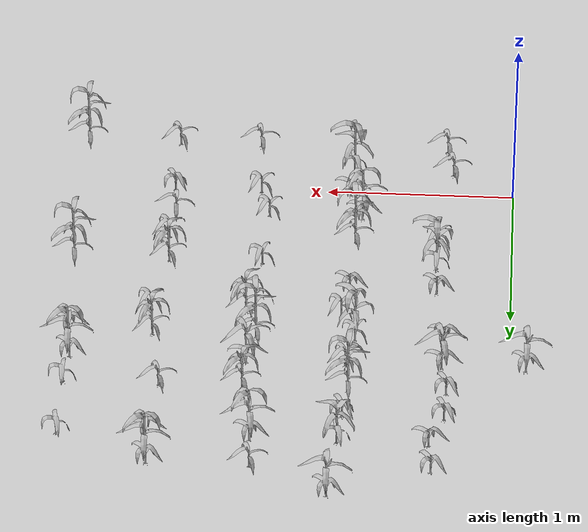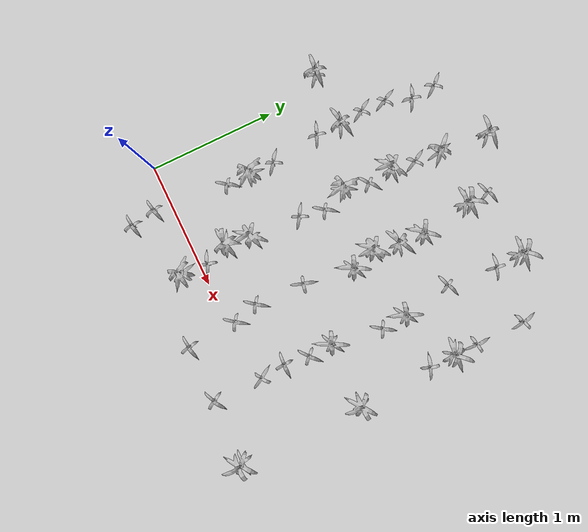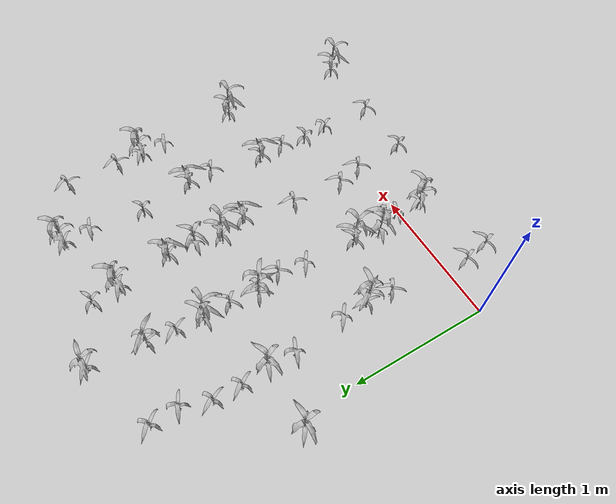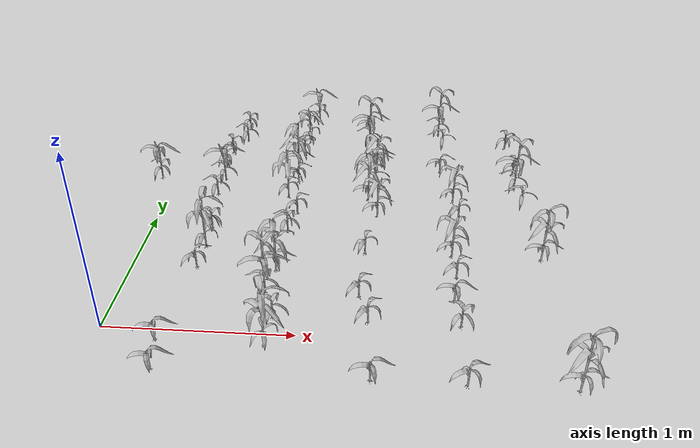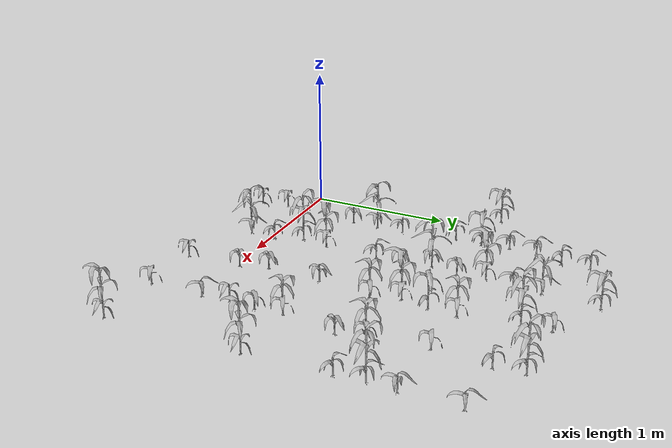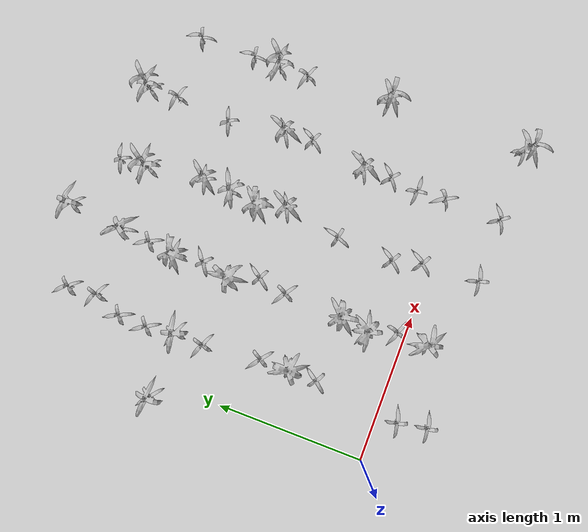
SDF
<sdf version="1.7">
 <world name="default">
  <model name="maize_-0.08417158594834165_1.4400000000000004">
   <static>1</static>
   <link name="link">
    <inertial>
     <mass>0.2</mass>
     <inertia>
      <ixx>0.166667</ixx>
      <ixy>0</ixy>
      <ixz>0</ixz>
      <iyy>0.166667</iyy>
      <iyz>0</iyz>
      <izz>0.166667</izz>
     </inertia>
    </inertial>
    <collision name="collision">
     <geometry><mesh><uri>model://corn_4/meshes/corn.dae</uri><scale>0.25 0.25 0.25</scale></mesh></geometry>
     <surface>
      <friction><ode><mu>0</mu><mu2>0</mu2></ode></friction>
      <contact><ode><kp>0</kp><kd>0</kd><max_vel>0</max_vel><min_depth>0.002</min_depth></ode></contact>
     </surface>
    </collision>
    <visual name="visual">
     <geometry><mesh><uri>model://corn_4/meshes/corn.dae</uri><scale>0.25 0.25 0.25</scale></mesh></geometry>
    </visual>
    <velocity_decay><linear>0</linear><angular>0</angular></velocity_decay>
   </link>
   <pose>-0.084172 1.44 0.05 0 -0 2.5336</pose>
  </model>
  <model name="maize_0.3600200686755409_-0.3149999999999995">
   <static>1</static>
   <link name="link">
    <inertial>
     <mass>0.2</mass>
     <inertia>
      <ixx>0.166667</ixx>
      <ixy>0</ixy>
      <ixz>0</ixz>
      <iyy>0.166667</iyy>
      <iyz>0</iyz>
      <izz>0.166667</izz>
     </inertia>
    </inertial>
    <collision name="collision">
     <geometry><mesh><uri>model://corn_3/meshes/corn.dae</uri><scale>0.25 0.25 0.25</scale></mesh></geometry>
     <surface>
      <friction><ode><mu>0</mu><mu2>0</mu2></ode></friction>
      <contact><ode><kp>0</kp><kd>0</kd><max_vel>0</max_vel><min_depth>0.002</min_depth></ode></contact>
     </surface>
    </collision>
    <visual name="visual">
     <geometry><mesh><uri>model://corn_3/meshes/corn.dae</uri><scale>0.25 0.25 0.25</scale></mesh></geometry>
    </visual>
    <velocity_decay><linear>0</linear><angular>0</angular></velocity_decay>
   </link>
   <pose>0.36002 -0.315 0.05 0 -0 0.219941</pose>
  </model>
  <model name="maize_0.3239062744950035_-0.1200000000000001">
   <static>1</static>
   <link name="link">
    <inertial>
     <mass>0.2</mass>
     <inertia>
      <ixx>0.166667</ixx>
      <ixy>0</ixy>
      <ixz>0</ixz>
      <iyy>0.166667</iyy>
      <iyz>0</iyz>
      <izz>0.166667</izz>
     </inertia>
    </inertial>
    <collision name="collision">
     <geometry><mesh><uri>model://corn_3/meshes/corn.dae</uri><scale>0.25 0.25 0.25</scale></mesh></geometry>
     <surface>
      <friction><ode><mu>0</mu><mu2>0</mu2></ode></friction>
      <contact><ode><kp>0</kp><kd>0</kd><max_vel>0</max_vel><min_depth>0.002</min_depth></ode></contact>
     </surface>
    </collision>
    <visual name="visual">
     <geometry><mesh><uri>model://corn_3/meshes/corn.dae</uri><scale>0.25 0.25 0.25</scale></mesh></geometry>
    </visual>
    <velocity_decay><linear>0</linear><angular>0</angular></velocity_decay>
   </link>
   <pose>0.323906 -0.12 0.05 0 -0 0.297378</pose>
  </model>
  <model name="maize_0.38934319669936407_0.46500000000000075">
   <static>1</static>
   <link name="link">
    <inertial>
     <mass>0.2</mass>
     <inertia>
      <ixx>0.166667</ixx>
      <ixy>0</ixy>
      <ixz>0</ixz>
      <iyy>0.166667</iyy>
      <iyz>0</iyz>
      <izz>0.166667</izz>
     </inertia>
    </inertial>
    <collision name="collision">
     <geometry><mesh><uri>model://corn_3/meshes/corn.dae</uri><scale>0.25 0.25 0.25</scale></mesh></geometry>
     <surface>
      <friction><ode><mu>0</mu><mu2>0</mu2></ode></friction>
      <contact><ode><kp>0</kp><kd>0</kd><max_vel>0</max_vel><min_depth>0.002</min_depth></ode></contact>
     </surface>
    </collision>
    <visual name="visual">
     <geometry><mesh><uri>model://corn_3/meshes/corn.dae</uri><scale>0.25 0.25 0.25</scale></mesh></geometry>
    </visual>
    <velocity_decay><linear>0</linear><angular>0</angular></velocity_decay>
   </link>
   <pose>0.389343 0.465 0.05 0 -0 0.993523</pose>
  </model>
  <model name="maize_0.3975677513231475_0.6600000000000001">
   <static>1</static>
   <link name="link">
    <inertial>
     <mass>0.2</mass>
     <inertia>
      <ixx>0.166667</ixx>
      <ixy>0</ixy>
      <ixz>0</ixz>
      <iyy>0.166667</iyy>
      <iyz>0</iyz>
      <izz>0.166667</izz>
     </inertia>
    </inertial>
    <collision name="collision">
     <geometry><mesh><uri>model://corn_5/meshes/corn.dae</uri><scale>0.25 0.25 0.25</scale></mesh></geometry>
     <surface>
      <friction><ode><mu>0</mu><mu2>0</mu2></ode></friction>
      <contact><ode><kp>0</kp><kd>0</kd><max_vel>0</max_vel><min_depth>0.002</min_depth></ode></contact>
     </surface>
    </collision>
    <visual name="visual">
     <geometry><mesh><uri>model://corn_5/meshes/corn.dae</uri><scale>0.25 0.25 0.25</scale></mesh></geometry>
    </visual>
    <velocity_decay><linear>0</linear><angular>0</angular></velocity_decay>
   </link>
   <pose>0.397568 0.66 0.05 0 -0 1.56666</pose>
  </model>
  <model name="maize_0.39170197920563_0.8550000000000004">
   <static>1</static>
   <link name="link">
    <inertial>
     <mass>0.2</mass>
     <inertia>
      <ixx>0.166667</ixx>
      <ixy>0</ixy>
      <ixz>0</ixz>
      <iyy>0.166667</iyy>
      <iyz>0</iyz>
      <izz>0.166667</izz>
     </inertia>
    </inertial>
    <collision name="collision">
     <geometry><mesh><uri>model://corn_3/meshes/corn.dae</uri><scale>0.25 0.25 0.25</scale></mesh></geometry>
     <surface>
      <friction><ode><mu>0</mu><mu2>0</mu2></ode></friction>
      <contact><ode><kp>0</kp><kd>0</kd><max_vel>0</max_vel><min_depth>0.002</min_depth></ode></contact>
     </surface>
    </collision>
    <visual name="visual">
     <geometry><mesh><uri>model://corn_3/meshes/corn.dae</uri><scale>0.25 0.25 0.25</scale></mesh></geometry>
    </visual>
    <velocity_decay><linear>0</linear><angular>0</angular></velocity_decay>
   </link>
   <pose>0.391702 0.855 0.05 0 -0 2.54147</pose>
  </model>
  <model name="maize_0.34184439075890166_1.245">
   <static>1</static>
   <link name="link">
    <inertial>
     <mass>0.2</mass>
     <inertia>
      <ixx>0.166667</ixx>
      <ixy>0</ixy>
      <ixz>0</ixz>
      <iyy>0.166667</iyy>
      <iyz>0</iyz>
      <izz>0.166667</izz>
     </inertia>
    </inertial>
    <collision name="collision">
     <geometry><mesh><uri>model://corn_3/meshes/corn.dae</uri><scale>0.25 0.25 0.25</scale></mesh></geometry>
     <surface>
      <friction><ode><mu>0</mu><mu2>0</mu2></ode></friction>
      <contact><ode><kp>0</kp><kd>0</kd><max_vel>0</max_vel><min_depth>0.002</min_depth></ode></contact>
     </surface>
    </collision>
    <visual name="visual">
     <geometry><mesh><uri>model://corn_3/meshes/corn.dae</uri><scale>0.25 0.25 0.25</scale></mesh></geometry>
    </visual>
    <velocity_decay><linear>0</linear><angular>0</angular></velocity_decay>
   </link>
   <pose>0.341844 1.245 0.05 0 -0 2.80363</pose>
  </model>
  <model name="maize_0.3523013560571281_1.4400000000000004">
   <static>1</static>
   <link name="link">
    <inertial>
     <mass>0.2</mass>
     <inertia>
      <ixx>0.166667</ixx>
      <ixy>0</ixy>
      <ixz>0</ixz>
      <iyy>0.166667</iyy>
      <iyz>0</iyz>
      <izz>0.166667</izz>
     </inertia>
    </inertial>
    <collision name="collision">
     <geometry><mesh><uri>model://corn_4/meshes/corn.dae</uri><scale>0.25 0.25 0.25</scale></mesh></geometry>
     <surface>
      <friction><ode><mu>0</mu><mu2>0</mu2></ode></friction>
      <contact><ode><kp>0</kp><kd>0</kd><max_vel>0</max_vel><min_depth>0.002</min_depth></ode></contact>
     </surface>
    </collision>
    <visual name="visual">
     <geometry><mesh><uri>model://corn_4/meshes/corn.dae</uri><scale>0.25 0.25 0.25</scale></mesh></geometry>
    </visual>
    <velocity_decay><linear>0</linear><angular>0</angular></velocity_decay>
   </link>
   <pose>0.352301 1.44 0.05 0 -0 2.82789</pose>
  </model>
  <model name="maize_0.3233289530268629_1.6350000000000007">
   <static>1</static>
   <link name="link">
    <inertial>
     <mass>0.2</mass>
     <inertia>
      <ixx>0.166667</ixx>
      <ixy>0</ixy>
      <ixz>0</ixz>
      <iyy>0.166667</iyy>
      <iyz>0</iyz>
      <izz>0.166667</izz>
     </inertia>
    </inertial>
    <collision name="collision">
     <geometry><mesh><uri>model://corn_3/meshes/corn.dae</uri><scale>0.25 0.25 0.25</scale></mesh></geometry>
     <surface>
      <friction><ode><mu>0</mu><mu2>0</mu2></ode></friction>
      <contact><ode><kp>0</kp><kd>0</kd><max_vel>0</max_vel><min_depth>0.002</min_depth></ode></contact>
     </surface>
    </collision>
    <visual name="visual">
     <geometry><mesh><uri>model://corn_3/meshes/corn.dae</uri><scale>0.25 0.25 0.25</scale></mesh></geometry>
    </visual>
    <velocity_decay><linear>0</linear><angular>0</angular></velocity_decay>
   </link>
   <pose>0.323329 1.635 0.05 0 -0 2.19328</pose>
  </model>
  <model name="maize_0.32888347216131814_1.83">
   <static>1</static>
   <link name="link">
    <inertial>
     <mass>0.2</mass>
     <inertia>
      <ixx>0.166667</ixx>
      <ixy>0</ixy>
      <ixz>0</ixz>
      <iyy>0.166667</iyy>
      <iyz>0</iyz>
      <izz>0.166667</izz>
     </inertia>
    </inertial>
    <collision name="collision">
     <geometry><mesh><uri>model://corn_3/meshes/corn.dae</uri><scale>0.25 0.25 0.25</scale></mesh></geometry>
     <surface>
      <friction><ode><mu>0</mu><mu2>0</mu2></ode></friction>
      <contact><ode><kp>0</kp><kd>0</kd><max_vel>0</max_vel><min_depth>0.002</min_depth></ode></contact>
     </surface>
    </collision>
    <visual name="visual">
     <geometry><mesh><uri>model://corn_3/meshes/corn.dae</uri><scale>0.25 0.25 0.25</scale></mesh></geometry>
    </visual>
    <velocity_decay><linear>0</linear><angular>0</angular></velocity_decay>
   </link>
   <pose>0.328883 1.83 0.05 0 -0 2.09455</pose>
  </model>
  <model name="maize_0.40238410536582414_2.0250000000000004">
   <static>1</static>
   <link name="link">
    <inertial>
     <mass>0.2</mass>
     <inertia>
      <ixx>0.166667</ixx>
      <ixy>0</ixy>
      <ixz>0</ixz>
      <iyy>0.166667</iyy>
      <iyz>0</iyz>
      <izz>0.166667</izz>
     </inertia>
    </inertial>
    <collision name="collision">
     <geometry><mesh><uri>model://corn_3/meshes/corn.dae</uri><scale>0.25 0.25 0.25</scale></mesh></geometry>
     <surface>
      <friction><ode><mu>0</mu><mu2>0</mu2></ode></friction>
      <contact><ode><kp>0</kp><kd>0</kd><max_vel>0</max_vel><min_depth>0.002</min_depth></ode></contact>
     </surface>
    </collision>
    <visual name="visual">
     <geometry><mesh><uri>model://corn_3/meshes/corn.dae</uri><scale>0.25 0.25 0.25</scale></mesh></geometry>
    </visual>
    <velocity_decay><linear>0</linear><angular>0</angular></velocity_decay>
   </link>
   <pose>0.402384 2.025 0.05 0 -0 2.76984</pose>
  </model>
  <model name="maize_0.38625118075154863_2.2200000000000006">
   <static>1</static>
   <link name="link">
    <inertial>
     <mass>0.2</mass>
     <inertia>
      <ixx>0.166667</ixx>
      <ixy>0</ixy>
      <ixz>0</ixz>
      <iyy>0.166667</iyy>
      <iyz>0</iyz>
      <izz>0.166667</izz>
     </inertia>
    </inertial>
    <collision name="collision">
     <geometry><mesh><uri>model://corn_3/meshes/corn.dae</uri><scale>0.25 0.25 0.25</scale></mesh></geometry>
     <surface>
      <friction><ode><mu>0</mu><mu2>0</mu2></ode></friction>
      <contact><ode><kp>0</kp><kd>0</kd><max_vel>0</max_vel><min_depth>0.002</min_depth></ode></contact>
     </surface>
    </collision>
    <visual name="visual">
     <geometry><mesh><uri>model://corn_3/meshes/corn.dae</uri><scale>0.25 0.25 0.25</scale></mesh></geometry>
    </visual>
    <velocity_decay><linear>0</linear><angular>0</angular></velocity_decay>
   </link>
   <pose>0.386251 2.22 0.05 0 -0 2.35049</pose>
  </model>
  <model name="maize_0.8617771293699308_-0.1200000000000001">
   <static>1</static>
   <link name="link">
    <inertial>
     <mass>0.2</mass>
     <inertia>
      <ixx>0.166667</ixx>
      <ixy>0</ixy>
      <ixz>0</ixz>
      <iyy>0.166667</iyy>
      <iyz>0</iyz>
      <izz>0.166667</izz>
     </inertia>
    </inertial>
    <collision name="collision">
     <geometry><mesh><uri>model://corn_5/meshes/corn.dae</uri><scale>0.25 0.25 0.25</scale></mesh></geometry>
     <surface>
      <friction><ode><mu>0</mu><mu2>0</mu2></ode></friction>
      <contact><ode><kp>0</kp><kd>0</kd><max_vel>0</max_vel><min_depth>0.002</min_depth></ode></contact>
     </surface>
    </collision>
    <visual name="visual">
     <geometry><mesh><uri>model://corn_5/meshes/corn.dae</uri><scale>0.25 0.25 0.25</scale></mesh></geometry>
    </visual>
    <velocity_decay><linear>0</linear><angular>0</angular></velocity_decay>
   </link>
   <pose>0.861777 -0.12 0.05 0 -0 1.92337</pose>
  </model>
  <model name="maize_0.8744974035520425_0.07500000000000018">
   <static>1</static>
   <link name="link">
    <inertial>
     <mass>0.2</mass>
     <inertia>
      <ixx>0.166667</ixx>
      <ixy>0</ixy>
      <ixz>0</ixz>
      <iyy>0.166667</iyy>
      <iyz>0</iyz>
      <izz>0.166667</izz>
     </inertia>
    </inertial>
    <collision name="collision">
     <geometry><mesh><uri>model://corn_3/meshes/corn.dae</uri><scale>0.25 0.25 0.25</scale></mesh></geometry>
     <surface>
      <friction><ode><mu>0</mu><mu2>0</mu2></ode></friction>
      <contact><ode><kp>0</kp><kd>0</kd><max_vel>0</max_vel><min_depth>0.002</min_depth></ode></contact>
     </surface>
    </collision>
    <visual name="visual">
     <geometry><mesh><uri>model://corn_3/meshes/corn.dae</uri><scale>0.25 0.25 0.25</scale></mesh></geometry>
    </visual>
    <velocity_decay><linear>0</linear><angular>0</angular></velocity_decay>
   </link>
   <pose>0.874497 0.075 0.05 0 -0 2.8194</pose>
  </model>
  <model name="maize_0.8048194894555932_0.27000000000000046">
   <static>1</static>
   <link name="link">
    <inertial>
     <mass>0.2</mass>
     <inertia>
      <ixx>0.166667</ixx>
      <ixy>0</ixy>
      <ixz>0</ixz>
      <iyy>0.166667</iyy>
      <iyz>0</iyz>
      <izz>0.166667</izz>
     </inertia>
    </inertial>
    <collision name="collision">
     <geometry><mesh><uri>model://corn_5/meshes/corn.dae</uri><scale>0.25 0.25 0.25</scale></mesh></geometry>
     <surface>
      <friction><ode><mu>0</mu><mu2>0</mu2></ode></friction>
      <contact><ode><kp>0</kp><kd>0</kd><max_vel>0</max_vel><min_depth>0.002</min_depth></ode></contact>
     </surface>
    </collision>
    <visual name="visual">
     <geometry><mesh><uri>model://corn_5/meshes/corn.dae</uri><scale>0.25 0.25 0.25</scale></mesh></geometry>
    </visual>
    <velocity_decay><linear>0</linear><angular>0</angular></velocity_decay>
   </link>
   <pose>0.804819 0.27 0.05 0 -0 2.78901</pose>
  </model>
  <model name="maize_0.8355338997990074_0.46500000000000075">
   <static>1</static>
   <link name="link">
    <inertial>
     <mass>0.2</mass>
     <inertia>
      <ixx>0.166667</ixx>
      <ixy>0</ixy>
      <ixz>0</ixz>
      <iyy>0.166667</iyy>
      <iyz>0</iyz>
      <izz>0.166667</izz>
     </inertia>
    </inertial>
    <collision name="collision">
     <geometry><mesh><uri>model://corn_5/meshes/corn.dae</uri><scale>0.25 0.25 0.25</scale></mesh></geometry>
     <surface>
      <friction><ode><mu>0</mu><mu2>0</mu2></ode></friction>
      <contact><ode><kp>0</kp><kd>0</kd><max_vel>0</max_vel><min_depth>0.002</min_depth></ode></contact>
     </surface>
    </collision>
    <visual name="visual">
     <geometry><mesh><uri>model://corn_5/meshes/corn.dae</uri><scale>0.25 0.25 0.25</scale></mesh></geometry>
    </visual>
    <velocity_decay><linear>0</linear><angular>0</angular></velocity_decay>
   </link>
   <pose>0.835534 0.465 0.05 0 -0 0.29639</pose>
  </model>
  <model name="maize_0.8504639001886466_0.8550000000000004">
   <static>1</static>
   <link name="link">
    <inertial>
     <mass>0.2</mass>
     <inertia>
      <ixx>0.166667</ixx>
      <ixy>0</ixy>
      <ixz>0</ixz>
      <iyy>0.166667</iyy>
      <iyz>0</iyz>
      <izz>0.166667</izz>
     </inertia>
    </inertial>
    <collision name="collision">
     <geometry><mesh><uri>model://corn_3/meshes/corn.dae</uri><scale>0.25 0.25 0.25</scale></mesh></geometry>
     <surface>
      <friction><ode><mu>0</mu><mu2>0</mu2></ode></friction>
      <contact><ode><kp>0</kp><kd>0</kd><max_vel>0</max_vel><min_depth>0.002</min_depth></ode></contact>
     </surface>
    </collision>
    <visual name="visual">
     <geometry><mesh><uri>model://corn_3/meshes/corn.dae</uri><scale>0.25 0.25 0.25</scale></mesh></geometry>
    </visual>
    <velocity_decay><linear>0</linear><angular>0</angular></velocity_decay>
   </link>
   <pose>0.850464 0.855 0.05 0 -0 2.61569</pose>
  </model>
  <model name="maize_0.8864060436826886_1.0500000000000007">
   <static>1</static>
   <link name="link">
    <inertial>
     <mass>0.2</mass>
     <inertia>
      <ixx>0.166667</ixx>
      <ixy>0</ixy>
      <ixz>0</ixz>
      <iyy>0.166667</iyy>
      <iyz>0</iyz>
      <izz>0.166667</izz>
     </inertia>
    </inertial>
    <collision name="collision">
     <geometry><mesh><uri>model://corn_3/meshes/corn.dae</uri><scale>0.25 0.25 0.25</scale></mesh></geometry>
     <surface>
      <friction><ode><mu>0</mu><mu2>0</mu2></ode></friction>
      <contact><ode><kp>0</kp><kd>0</kd><max_vel>0</max_vel><min_depth>0.002</min_depth></ode></contact>
     </surface>
    </collision>
    <visual name="visual">
     <geometry><mesh><uri>model://corn_3/meshes/corn.dae</uri><scale>0.25 0.25 0.25</scale></mesh></geometry>
    </visual>
    <velocity_decay><linear>0</linear><angular>0</angular></velocity_decay>
   </link>
   <pose>0.886406 1.05 0.05 0 -0 0.998579</pose>
  </model>
  <model name="maize_0.8061012988389296_1.245">
   <static>1</static>
   <link name="link">
    <inertial>
     <mass>0.2</mass>
     <inertia>
      <ixx>0.166667</ixx>
      <ixy>0</ixy>
      <ixz>0</ixz>
      <iyy>0.166667</iyy>
      <iyz>0</iyz>
      <izz>0.166667</izz>
     </inertia>
    </inertial>
    <collision name="collision">
     <geometry><mesh><uri>model://corn_5/meshes/corn.dae</uri><scale>0.25 0.25 0.25</scale></mesh></geometry>
     <surface>
      <friction><ode><mu>0</mu><mu2>0</mu2></ode></friction>
      <contact><ode><kp>0</kp><kd>0</kd><max_vel>0</max_vel><min_depth>0.002</min_depth></ode></contact>
     </surface>
    </collision>
    <visual name="visual">
     <geometry><mesh><uri>model://corn_5/meshes/corn.dae</uri><scale>0.25 0.25 0.25</scale></mesh></geometry>
    </visual>
    <velocity_decay><linear>0</linear><angular>0</angular></velocity_decay>
   </link>
   <pose>0.806101 1.245 0.05 0 -0 1.14005</pose>
  </model>
  <model name="maize_0.8491032989034424_1.4400000000000004">
   <static>1</static>
   <link name="link">
    <inertial>
     <mass>0.2</mass>
     <inertia>
      <ixx>0.166667</ixx>
      <ixy>0</ixy>
      <ixz>0</ixz>
      <iyy>0.166667</iyy>
      <iyz>0</iyz>
      <izz>0.166667</izz>
     </inertia>
    </inertial>
    <collision name="collision">
     <geometry><mesh><uri>model://corn_3/meshes/corn.dae</uri><scale>0.25 0.25 0.25</scale></mesh></geometry>
     <surface>
      <friction><ode><mu>0</mu><mu2>0</mu2></ode></friction>
      <contact><ode><kp>0</kp><kd>0</kd><max_vel>0</max_vel><min_depth>0.002</min_depth></ode></contact>
     </surface>
    </collision>
    <visual name="visual">
     <geometry><mesh><uri>model://corn_3/meshes/corn.dae</uri><scale>0.25 0.25 0.25</scale></mesh></geometry>
    </visual>
    <velocity_decay><linear>0</linear><angular>0</angular></velocity_decay>
   </link>
   <pose>0.849103 1.44 0.05 0 -0 0.70005</pose>
  </model>
  <model name="maize_0.8277597421077391_1.6350000000000007">
   <static>1</static>
   <link name="link">
    <inertial>
     <mass>0.2</mass>
     <inertia>
      <ixx>0.166667</ixx>
      <ixy>0</ixy>
      <ixz>0</ixz>
      <iyy>0.166667</iyy>
      <iyz>0</iyz>
      <izz>0.166667</izz>
     </inertia>
    </inertial>
    <collision name="collision">
     <geometry><mesh><uri>model://corn_5/meshes/corn.dae</uri><scale>0.25 0.25 0.25</scale></mesh></geometry>
     <surface>
      <friction><ode><mu>0</mu><mu2>0</mu2></ode></friction>
      <contact><ode><kp>0</kp><kd>0</kd><max_vel>0</max_vel><min_depth>0.002</min_depth></ode></contact>
     </surface>
    </collision>
    <visual name="visual">
     <geometry><mesh><uri>model://corn_5/meshes/corn.dae</uri><scale>0.25 0.25 0.25</scale></mesh></geometry>
    </visual>
    <velocity_decay><linear>0</linear><angular>0</angular></velocity_decay>
   </link>
   <pose>0.82776 1.635 0.05 0 -0 0.09676</pose>
  </model>
  <model name="maize_0.8508598613984787_1.83">
   <static>1</static>
   <link name="link">
    <inertial>
     <mass>0.2</mass>
     <inertia>
      <ixx>0.166667</ixx>
      <ixy>0</ixy>
      <ixz>0</ixz>
      <iyy>0.166667</iyy>
      <iyz>0</iyz>
      <izz>0.166667</izz>
     </inertia>
    </inertial>
    <collision name="collision">
     <geometry><mesh><uri>model://corn_3/meshes/corn.dae</uri><scale>0.25 0.25 0.25</scale></mesh></geometry>
     <surface>
      <friction><ode><mu>0</mu><mu2>0</mu2></ode></friction>
      <contact><ode><kp>0</kp><kd>0</kd><max_vel>0</max_vel><min_depth>0.002</min_depth></ode></contact>
     </surface>
    </collision>
    <visual name="visual">
     <geometry><mesh><uri>model://corn_3/meshes/corn.dae</uri><scale>0.25 0.25 0.25</scale></mesh></geometry>
    </visual>
    <velocity_decay><linear>0</linear><angular>0</angular></velocity_decay>
   </link>
   <pose>0.85086 1.83 0.05 0 -0 2.14426</pose>
  </model>
  <model name="maize_0.8684620014241937_2.0250000000000004">
   <static>1</static>
   <link name="link">
    <inertial>
     <mass>0.2</mass>
     <inertia>
      <ixx>0.166667</ixx>
      <ixy>0</ixy>
      <ixz>0</ixz>
      <iyy>0.166667</iyy>
      <iyz>0</iyz>
      <izz>0.166667</izz>
     </inertia>
    </inertial>
    <collision name="collision">
     <geometry><mesh><uri>model://corn_4/meshes/corn.dae</uri><scale>0.25 0.25 0.25</scale></mesh></geometry>
     <surface>
      <friction><ode><mu>0</mu><mu2>0</mu2></ode></friction>
      <contact><ode><kp>0</kp><kd>0</kd><max_vel>0</max_vel><min_depth>0.002</min_depth></ode></contact>
     </surface>
    </collision>
    <visual name="visual">
     <geometry><mesh><uri>model://corn_4/meshes/corn.dae</uri><scale>0.25 0.25 0.25</scale></mesh></geometry>
    </visual>
    <velocity_decay><linear>0</linear><angular>0</angular></velocity_decay>
   </link>
   <pose>0.868462 2.025 0.05 0 -0 1.83798</pose>
  </model>
  <model name="maize_0.9043126647042313_2.415">
   <static>1</static>
   <link name="link">
    <inertial>
     <mass>0.2</mass>
     <inertia>
      <ixx>0.166667</ixx>
      <ixy>0</ixy>
      <ixz>0</ixz>
      <iyy>0.166667</iyy>
      <iyz>0</iyz>
      <izz>0.166667</izz>
     </inertia>
    </inertial>
    <collision name="collision">
     <geometry><mesh><uri>model://corn_4/meshes/corn.dae</uri><scale>0.25 0.25 0.25</scale></mesh></geometry>
     <surface>
      <friction><ode><mu>0</mu><mu2>0</mu2></ode></friction>
      <contact><ode><kp>0</kp><kd>0</kd><max_vel>0</max_vel><min_depth>0.002</min_depth></ode></contact>
     </surface>
    </collision>
    <visual name="visual">
     <geometry><mesh><uri>model://corn_4/meshes/corn.dae</uri><scale>0.25 0.25 0.25</scale></mesh></geometry>
    </visual>
    <velocity_decay><linear>0</linear><angular>0</angular></velocity_decay>
   </link>
   <pose>0.904313 2.415 0.05 0 -0 2.51777</pose>
  </model>
  <model name="maize_1.3786553658593488_-0.3149999999999995">
   <static>1</static>
   <link name="link">
    <inertial>
     <mass>0.2</mass>
     <inertia>
      <ixx>0.166667</ixx>
      <ixy>0</ixy>
      <ixz>0</ixz>
      <iyy>0.166667</iyy>
      <iyz>0</iyz>
      <izz>0.166667</izz>
     </inertia>
    </inertial>
    <collision name="collision">
     <geometry><mesh><uri>model://corn_3/meshes/corn.dae</uri><scale>0.25 0.25 0.25</scale></mesh></geometry>
     <surface>
      <friction><ode><mu>0</mu><mu2>0</mu2></ode></friction>
      <contact><ode><kp>0</kp><kd>0</kd><max_vel>0</max_vel><min_depth>0.002</min_depth></ode></contact>
     </surface>
    </collision>
    <visual name="visual">
     <geometry><mesh><uri>model://corn_3/meshes/corn.dae</uri><scale>0.25 0.25 0.25</scale></mesh></geometry>
    </visual>
    <velocity_decay><linear>0</linear><angular>0</angular></velocity_decay>
   </link>
   <pose>1.37865 -0.315 0.05 0 -0 0.226187</pose>
  </model>
  <model name="maize_1.356947181892669_0.07500000000000018">
   <static>1</static>
   <link name="link">
    <inertial>
     <mass>0.2</mass>
     <inertia>
      <ixx>0.166667</ixx>
      <ixy>0</ixy>
      <ixz>0</ixz>
      <iyy>0.166667</iyy>
      <iyz>0</iyz>
      <izz>0.166667</izz>
     </inertia>
    </inertial>
    <collision name="collision">
     <geometry><mesh><uri>model://corn_3/meshes/corn.dae</uri><scale>0.25 0.25 0.25</scale></mesh></geometry>
     <surface>
      <friction><ode><mu>0</mu><mu2>0</mu2></ode></friction>
      <contact><ode><kp>0</kp><kd>0</kd><max_vel>0</max_vel><min_depth>0.002</min_depth></ode></contact>
     </surface>
    </collision>
    <visual name="visual">
     <geometry><mesh><uri>model://corn_3/meshes/corn.dae</uri><scale>0.25 0.25 0.25</scale></mesh></geometry>
    </visual>
    <velocity_decay><linear>0</linear><angular>0</angular></velocity_decay>
   </link>
   <pose>1.35695 0.075 0.05 0 -0 0.991281</pose>
  </model>
  <model name="maize_1.3042232262195872_0.27000000000000046">
   <static>1</static>
   <link name="link">
    <inertial>
     <mass>0.2</mass>
     <inertia>
      <ixx>0.166667</ixx>
      <ixy>0</ixy>
      <ixz>0</ixz>
      <iyy>0.166667</iyy>
      <iyz>0</iyz>
      <izz>0.166667</izz>
     </inertia>
    </inertial>
    <collision name="collision">
     <geometry><mesh><uri>model://corn_3/meshes/corn.dae</uri><scale>0.25 0.25 0.25</scale></mesh></geometry>
     <surface>
      <friction><ode><mu>0</mu><mu2>0</mu2></ode></friction>
      <contact><ode><kp>0</kp><kd>0</kd><max_vel>0</max_vel><min_depth>0.002</min_depth></ode></contact>
     </surface>
    </collision>
    <visual name="visual">
     <geometry><mesh><uri>model://corn_3/meshes/corn.dae</uri><scale>0.25 0.25 0.25</scale></mesh></geometry>
    </visual>
    <velocity_decay><linear>0</linear><angular>0</angular></velocity_decay>
   </link>
   <pose>1.30422 0.27 0.05 0 -0 0.977921</pose>
  </model>
  <model name="maize_1.322908694708569_0.6600000000000001">
   <static>1</static>
   <link name="link">
    <inertial>
     <mass>0.2</mass>
     <inertia>
      <ixx>0.166667</ixx>
      <ixy>0</ixy>
      <ixz>0</ixz>
      <iyy>0.166667</iyy>
      <iyz>0</iyz>
      <izz>0.166667</izz>
     </inertia>
    </inertial>
    <collision name="collision">
     <geometry><mesh><uri>model://corn_3/meshes/corn.dae</uri><scale>0.25 0.25 0.25</scale></mesh></geometry>
     <surface>
      <friction><ode><mu>0</mu><mu2>0</mu2></ode></friction>
      <contact><ode><kp>0</kp><kd>0</kd><max_vel>0</max_vel><min_depth>0.002</min_depth></ode></contact>
     </surface>
    </collision>
    <visual name="visual">
     <geometry><mesh><uri>model://corn_3/meshes/corn.dae</uri><scale>0.25 0.25 0.25</scale></mesh></geometry>
    </visual>
    <velocity_decay><linear>0</linear><angular>0</angular></velocity_decay>
   </link>
   <pose>1.32291 0.66 0.05 0 -0 1.3133</pose>
  </model>
  <model name="maize_1.3849396511428622_1.0500000000000007">
   <static>1</static>
   <link name="link">
    <inertial>
     <mass>0.2</mass>
     <inertia>
      <ixx>0.166667</ixx>
      <ixy>0</ixy>
      <ixz>0</ixz>
      <iyy>0.166667</iyy>
      <iyz>0</iyz>
      <izz>0.166667</izz>
     </inertia>
    </inertial>
    <collision name="collision">
     <geometry><mesh><uri>model://corn_4/meshes/corn.dae</uri><scale>0.25 0.25 0.25</scale></mesh></geometry>
     <surface>
      <friction><ode><mu>0</mu><mu2>0</mu2></ode></friction>
      <contact><ode><kp>0</kp><kd>0</kd><max_vel>0</max_vel><min_depth>0.002</min_depth></ode></contact>
     </surface>
    </collision>
    <visual name="visual">
     <geometry><mesh><uri>model://corn_4/meshes/corn.dae</uri><scale>0.25 0.25 0.25</scale></mesh></geometry>
    </visual>
    <velocity_decay><linear>0</linear><angular>0</angular></velocity_decay>
   </link>
   <pose>1.38494 1.05 0.05 0 -0 0.530352</pose>
  </model>
  <model name="maize_1.3227122662457316_1.245">
   <static>1</static>
   <link name="link">
    <inertial>
     <mass>0.2</mass>
     <inertia>
      <ixx>0.166667</ixx>
      <ixy>0</ixy>
      <ixz>0</ixz>
      <iyy>0.166667</iyy>
      <iyz>0</iyz>
      <izz>0.166667</izz>
     </inertia>
    </inertial>
    <collision name="collision">
     <geometry><mesh><uri>model://corn_5/meshes/corn.dae</uri><scale>0.25 0.25 0.25</scale></mesh></geometry>
     <surface>
      <friction><ode><mu>0</mu><mu2>0</mu2></ode></friction>
      <contact><ode><kp>0</kp><kd>0</kd><max_vel>0</max_vel><min_depth>0.002</min_depth></ode></contact>
     </surface>
    </collision>
    <visual name="visual">
     <geometry><mesh><uri>model://corn_5/meshes/corn.dae</uri><scale>0.25 0.25 0.25</scale></mesh></geometry>
    </visual>
    <velocity_decay><linear>0</linear><angular>0</angular></velocity_decay>
   </link>
   <pose>1.32271 1.245 0.05 0 -0 0.259757</pose>
  </model>
  <model name="maize_1.3627668311803969_1.4400000000000004">
   <static>1</static>
   <link name="link">
    <inertial>
     <mass>0.2</mass>
     <inertia>
      <ixx>0.166667</ixx>
      <ixy>0</ixy>
      <ixz>0</ixz>
      <iyy>0.166667</iyy>
      <iyz>0</iyz>
      <izz>0.166667</izz>
     </inertia>
    </inertial>
    <collision name="collision">
     <geometry><mesh><uri>model://corn_4/meshes/corn.dae</uri><scale>0.25 0.25 0.25</scale></mesh></geometry>
     <surface>
      <friction><ode><mu>0</mu><mu2>0</mu2></ode></friction>
      <contact><ode><kp>0</kp><kd>0</kd><max_vel>0</max_vel><min_depth>0.002</min_depth></ode></contact>
     </surface>
    </collision>
    <visual name="visual">
     <geometry><mesh><uri>model://corn_4/meshes/corn.dae</uri><scale>0.25 0.25 0.25</scale></mesh></geometry>
    </visual>
    <velocity_decay><linear>0</linear><angular>0</angular></velocity_decay>
   </link>
   <pose>1.36277 1.44 0.05 0 -0 3.064</pose>
  </model>
  <model name="maize_1.371376940981255_1.6350000000000007">
   <static>1</static>
   <link name="link">
    <inertial>
     <mass>0.2</mass>
     <inertia>
      <ixx>0.166667</ixx>
      <ixy>0</ixy>
      <ixz>0</ixz>
      <iyy>0.166667</iyy>
      <iyz>0</iyz>
      <izz>0.166667</izz>
     </inertia>
    </inertial>
    <collision name="collision">
     <geometry><mesh><uri>model://corn_4/meshes/corn.dae</uri><scale>0.25 0.25 0.25</scale></mesh></geometry>
     <surface>
      <friction><ode><mu>0</mu><mu2>0</mu2></ode></friction>
      <contact><ode><kp>0</kp><kd>0</kd><max_vel>0</max_vel><min_depth>0.002</min_depth></ode></contact>
     </surface>
    </collision>
    <visual name="visual">
     <geometry><mesh><uri>model://corn_4/meshes/corn.dae</uri><scale>0.25 0.25 0.25</scale></mesh></geometry>
    </visual>
    <velocity_decay><linear>0</linear><angular>0</angular></velocity_decay>
   </link>
   <pose>1.37138 1.635 0.05 0 -0 0.352363</pose>
  </model>
  <model name="maize_1.312520623793848_2.0250000000000004">
   <static>1</static>
   <link name="link">
    <inertial>
     <mass>0.2</mass>
     <inertia>
      <ixx>0.166667</ixx>
      <ixy>0</ixy>
      <ixz>0</ixz>
      <iyy>0.166667</iyy>
      <iyz>0</iyz>
      <izz>0.166667</izz>
     </inertia>
    </inertial>
    <collision name="collision">
     <geometry><mesh><uri>model://corn_5/meshes/corn.dae</uri><scale>0.25 0.25 0.25</scale></mesh></geometry>
     <surface>
      <friction><ode><mu>0</mu><mu2>0</mu2></ode></friction>
      <contact><ode><kp>0</kp><kd>0</kd><max_vel>0</max_vel><min_depth>0.002</min_depth></ode></contact>
     </surface>
    </collision>
    <visual name="visual">
     <geometry><mesh><uri>model://corn_5/meshes/corn.dae</uri><scale>0.25 0.25 0.25</scale></mesh></geometry>
    </visual>
    <velocity_decay><linear>0</linear><angular>0</angular></velocity_decay>
   </link>
   <pose>1.31252 2.025 0.05 0 -0 2.69876</pose>
  </model>
  <model name="maize_1.302737424557872_2.2200000000000006">
   <static>1</static>
   <link name="link">
    <inertial>
     <mass>0.2</mass>
     <inertia>
      <ixx>0.166667</ixx>
      <ixy>0</ixy>
      <ixz>0</ixz>
      <iyy>0.166667</iyy>
      <iyz>0</iyz>
      <izz>0.166667</izz>
     </inertia>
    </inertial>
    <collision name="collision">
     <geometry><mesh><uri>model://corn_3/meshes/corn.dae</uri><scale>0.25 0.25 0.25</scale></mesh></geometry>
     <surface>
      <friction><ode><mu>0</mu><mu2>0</mu2></ode></friction>
      <contact><ode><kp>0</kp><kd>0</kd><max_vel>0</max_vel><min_depth>0.002</min_depth></ode></contact>
     </surface>
    </collision>
    <visual name="visual">
     <geometry><mesh><uri>model://corn_3/meshes/corn.dae</uri><scale>0.25 0.25 0.25</scale></mesh></geometry>
    </visual>
    <velocity_decay><linear>0</linear><angular>0</angular></velocity_decay>
   </link>
   <pose>1.30274 2.22 0.05 0 -0 0.397409</pose>
  </model>
  <model name="maize_1.820665292799761_-0.3149999999999995">
   <static>1</static>
   <link name="link">
    <inertial>
     <mass>0.2</mass>
     <inertia>
      <ixx>0.166667</ixx>
      <ixy>0</ixy>
      <ixz>0</ixz>
      <iyy>0.166667</iyy>
      <iyz>0</iyz>
      <izz>0.166667</izz>
     </inertia>
    </inertial>
    <collision name="collision">
     <geometry><mesh><uri>model://corn_3/meshes/corn.dae</uri><scale>0.25 0.25 0.25</scale></mesh></geometry>
     <surface>
      <friction><ode><mu>0</mu><mu2>0</mu2></ode></friction>
      <contact><ode><kp>0</kp><kd>0</kd><max_vel>0</max_vel><min_depth>0.002</min_depth></ode></contact>
     </surface>
    </collision>
    <visual name="visual">
     <geometry><mesh><uri>model://corn_3/meshes/corn.dae</uri><scale>0.25 0.25 0.25</scale></mesh></geometry>
    </visual>
    <velocity_decay><linear>0</linear><angular>0</angular></velocity_decay>
   </link>
   <pose>1.82066 -0.315 0.05 0 -0 0.551312</pose>
  </model>
  <model name="maize_1.8237170518874994_0.07500000000000018">
   <static>1</static>
   <link name="link">
    <inertial>
     <mass>0.2</mass>
     <inertia>
      <ixx>0.166667</ixx>
      <ixy>0</ixy>
      <ixz>0</ixz>
      <iyy>0.166667</iyy>
      <iyz>0</iyz>
      <izz>0.166667</izz>
     </inertia>
    </inertial>
    <collision name="collision">
     <geometry><mesh><uri>model://corn_3/meshes/corn.dae</uri><scale>0.25 0.25 0.25</scale></mesh></geometry>
     <surface>
      <friction><ode><mu>0</mu><mu2>0</mu2></ode></friction>
      <contact><ode><kp>0</kp><kd>0</kd><max_vel>0</max_vel><min_depth>0.002</min_depth></ode></contact>
     </surface>
    </collision>
    <visual name="visual">
     <geometry><mesh><uri>model://corn_3/meshes/corn.dae</uri><scale>0.25 0.25 0.25</scale></mesh></geometry>
    </visual>
    <velocity_decay><linear>0</linear><angular>0</angular></velocity_decay>
   </link>
   <pose>1.82372 0.075 0.05 0 -0 2.18068</pose>
  </model>
  <model name="maize_1.8042203176592988_0.27000000000000046">
   <static>1</static>
   <link name="link">
    <inertial>
     <mass>0.2</mass>
     <inertia>
      <ixx>0.166667</ixx>
      <ixy>0</ixy>
      <ixz>0</ixz>
      <iyy>0.166667</iyy>
      <iyz>0</iyz>
      <izz>0.166667</izz>
     </inertia>
    </inertial>
    <collision name="collision">
     <geometry><mesh><uri>model://corn_3/meshes/corn.dae</uri><scale>0.25 0.25 0.25</scale></mesh></geometry>
     <surface>
      <friction><ode><mu>0</mu><mu2>0</mu2></ode></friction>
      <contact><ode><kp>0</kp><kd>0</kd><max_vel>0</max_vel><min_depth>0.002</min_depth></ode></contact>
     </surface>
    </collision>
    <visual name="visual">
     <geometry><mesh><uri>model://corn_3/meshes/corn.dae</uri><scale>0.25 0.25 0.25</scale></mesh></geometry>
    </visual>
    <velocity_decay><linear>0</linear><angular>0</angular></velocity_decay>
   </link>
   <pose>1.80422 0.27 0.05 0 -0 0.029931</pose>
  </model>
  <model name="maize_1.8292041303493622_0.46500000000000075">
   <static>1</static>
   <link name="link">
    <inertial>
     <mass>0.2</mass>
     <inertia>
      <ixx>0.166667</ixx>
      <ixy>0</ixy>
      <ixz>0</ixz>
      <iyy>0.166667</iyy>
      <iyz>0</iyz>
      <izz>0.166667</izz>
     </inertia>
    </inertial>
    <collision name="collision">
     <geometry><mesh><uri>model://corn_3/meshes/corn.dae</uri><scale>0.25 0.25 0.25</scale></mesh></geometry>
     <surface>
      <friction><ode><mu>0</mu><mu2>0</mu2></ode></friction>
      <contact><ode><kp>0</kp><kd>0</kd><max_vel>0</max_vel><min_depth>0.002</min_depth></ode></contact>
     </surface>
    </collision>
    <visual name="visual">
     <geometry><mesh><uri>model://corn_3/meshes/corn.dae</uri><scale>0.25 0.25 0.25</scale></mesh></geometry>
    </visual>
    <velocity_decay><linear>0</linear><angular>0</angular></velocity_decay>
   </link>
   <pose>1.8292 0.465 0.05 0 -0 0.767682</pose>
  </model>
  <model name="maize_1.8169606056470153_0.6600000000000001">
   <static>1</static>
   <link name="link">
    <inertial>
     <mass>0.2</mass>
     <inertia>
      <ixx>0.166667</ixx>
      <ixy>0</ixy>
      <ixz>0</ixz>
      <iyy>0.166667</iyy>
      <iyz>0</iyz>
      <izz>0.166667</izz>
     </inertia>
    </inertial>
    <collision name="collision">
     <geometry><mesh><uri>model://corn_4/meshes/corn.dae</uri><scale>0.25 0.25 0.25</scale></mesh></geometry>
     <surface>
      <friction><ode><mu>0</mu><mu2>0</mu2></ode></friction>
      <contact><ode><kp>0</kp><kd>0</kd><max_vel>0</max_vel><min_depth>0.002</min_depth></ode></contact>
     </surface>
    </collision>
    <visual name="visual">
     <geometry><mesh><uri>model://corn_4/meshes/corn.dae</uri><scale>0.25 0.25 0.25</scale></mesh></geometry>
    </visual>
    <velocity_decay><linear>0</linear><angular>0</angular></velocity_decay>
   </link>
   <pose>1.81696 0.66 0.05 0 -0 0.54323</pose>
  </model>
  <model name="maize_1.8845951140579444_1.0500000000000007">
   <static>1</static>
   <link name="link">
    <inertial>
     <mass>0.2</mass>
     <inertia>
      <ixx>0.166667</ixx>
      <ixy>0</ixy>
      <ixz>0</ixz>
      <iyy>0.166667</iyy>
      <iyz>0</iyz>
      <izz>0.166667</izz>
     </inertia>
    </inertial>
    <collision name="collision">
     <geometry><mesh><uri>model://corn_3/meshes/corn.dae</uri><scale>0.25 0.25 0.25</scale></mesh></geometry>
     <surface>
      <friction><ode><mu>0</mu><mu2>0</mu2></ode></friction>
      <contact><ode><kp>0</kp><kd>0</kd><max_vel>0</max_vel><min_depth>0.002</min_depth></ode></contact>
     </surface>
    </collision>
    <visual name="visual">
     <geometry><mesh><uri>model://corn_3/meshes/corn.dae</uri><scale>0.25 0.25 0.25</scale></mesh></geometry>
    </visual>
    <velocity_decay><linear>0</linear><angular>0</angular></velocity_decay>
   </link>
   <pose>1.8846 1.05 0.05 0 -0 1.02004</pose>
  </model>
  <model name="maize_1.863823495614655_1.245">
   <static>1</static>
   <link name="link">
    <inertial>
     <mass>0.2</mass>
     <inertia>
      <ixx>0.166667</ixx>
      <ixy>0</ixy>
      <ixz>0</ixz>
      <iyy>0.166667</iyy>
      <iyz>0</iyz>
      <izz>0.166667</izz>
     </inertia>
    </inertial>
    <collision name="collision">
     <geometry><mesh><uri>model://corn_4/meshes/corn.dae</uri><scale>0.25 0.25 0.25</scale></mesh></geometry>
     <surface>
      <friction><ode><mu>0</mu><mu2>0</mu2></ode></friction>
      <contact><ode><kp>0</kp><kd>0</kd><max_vel>0</max_vel><min_depth>0.002</min_depth></ode></contact>
     </surface>
    </collision>
    <visual name="visual">
     <geometry><mesh><uri>model://corn_4/meshes/corn.dae</uri><scale>0.25 0.25 0.25</scale></mesh></geometry>
    </visual>
    <velocity_decay><linear>0</linear><angular>0</angular></velocity_decay>
   </link>
   <pose>1.86382 1.245 0.05 0 -0 0.641658</pose>
  </model>
  <model name="maize_1.803458062966952_1.6350000000000007">
   <static>1</static>
   <link name="link">
    <inertial>
     <mass>0.2</mass>
     <inertia>
      <ixx>0.166667</ixx>
      <ixy>0</ixy>
      <ixz>0</ixz>
      <iyy>0.166667</iyy>
      <iyz>0</iyz>
      <izz>0.166667</izz>
     </inertia>
    </inertial>
    <collision name="collision">
     <geometry><mesh><uri>model://corn_3/meshes/corn.dae</uri><scale>0.25 0.25 0.25</scale></mesh></geometry>
     <surface>
      <friction><ode><mu>0</mu><mu2>0</mu2></ode></friction>
      <contact><ode><kp>0</kp><kd>0</kd><max_vel>0</max_vel><min_depth>0.002</min_depth></ode></contact>
     </surface>
    </collision>
    <visual name="visual">
     <geometry><mesh><uri>model://corn_3/meshes/corn.dae</uri><scale>0.25 0.25 0.25</scale></mesh></geometry>
    </visual>
    <velocity_decay><linear>0</linear><angular>0</angular></velocity_decay>
   </link>
   <pose>1.80346 1.635 0.05 0 -0 0.40484</pose>
  </model>
  <model name="maize_1.844172830585385_2.0250000000000004">
   <static>1</static>
   <link name="link">
    <inertial>
     <mass>0.2</mass>
     <inertia>
      <ixx>0.166667</ixx>
      <ixy>0</ixy>
      <ixz>0</ixz>
      <iyy>0.166667</iyy>
      <iyz>0</iyz>
      <izz>0.166667</izz>
     </inertia>
    </inertial>
    <collision name="collision">
     <geometry><mesh><uri>model://corn_3/meshes/corn.dae</uri><scale>0.25 0.25 0.25</scale></mesh></geometry>
     <surface>
      <friction><ode><mu>0</mu><mu2>0</mu2></ode></friction>
      <contact><ode><kp>0</kp><kd>0</kd><max_vel>0</max_vel><min_depth>0.002</min_depth></ode></contact>
     </surface>
    </collision>
    <visual name="visual">
     <geometry><mesh><uri>model://corn_3/meshes/corn.dae</uri><scale>0.25 0.25 0.25</scale></mesh></geometry>
    </visual>
    <velocity_decay><linear>0</linear><angular>0</angular></velocity_decay>
   </link>
   <pose>1.84417 2.025 0.05 0 -0 2.95783</pose>
  </model>
  <model name="maize_1.8266274183806492_2.2200000000000006">
   <static>1</static>
   <link name="link">
    <inertial>
     <mass>0.2</mass>
     <inertia>
      <ixx>0.166667</ixx>
      <ixy>0</ixy>
      <ixz>0</ixz>
      <iyy>0.166667</iyy>
      <iyz>0</iyz>
      <izz>0.166667</izz>
     </inertia>
    </inertial>
    <collision name="collision">
     <geometry><mesh><uri>model://corn_5/meshes/corn.dae</uri><scale>0.25 0.25 0.25</scale></mesh></geometry>
     <surface>
      <friction><ode><mu>0</mu><mu2>0</mu2></ode></friction>
      <contact><ode><kp>0</kp><kd>0</kd><max_vel>0</max_vel><min_depth>0.002</min_depth></ode></contact>
     </surface>
    </collision>
    <visual name="visual">
     <geometry><mesh><uri>model://corn_5/meshes/corn.dae</uri><scale>0.25 0.25 0.25</scale></mesh></geometry>
    </visual>
    <velocity_decay><linear>0</linear><angular>0</angular></velocity_decay>
   </link>
   <pose>1.82663 2.22 0.05 0 -0 2.51496</pose>
  </model>
  <model name="maize_2.319590534078076_-0.3149999999999995">
   <static>1</static>
   <link name="link">
    <inertial>
     <mass>0.2</mass>
     <inertia>
      <ixx>0.166667</ixx>
      <ixy>0</ixy>
      <ixz>0</ixz>
      <iyy>0.166667</iyy>
      <iyz>0</iyz>
      <izz>0.166667</izz>
     </inertia>
    </inertial>
    <collision name="collision">
     <geometry><mesh><uri>model://corn_5/meshes/corn.dae</uri><scale>0.25 0.25 0.25</scale></mesh></geometry>
     <surface>
      <friction><ode><mu>0</mu><mu2>0</mu2></ode></friction>
      <contact><ode><kp>0</kp><kd>0</kd><max_vel>0</max_vel><min_depth>0.002</min_depth></ode></contact>
     </surface>
    </collision>
    <visual name="visual">
     <geometry><mesh><uri>model://corn_5/meshes/corn.dae</uri><scale>0.25 0.25 0.25</scale></mesh></geometry>
    </visual>
    <velocity_decay><linear>0</linear><angular>0</angular></velocity_decay>
   </link>
   <pose>2.31959 -0.315 0.05 0 -0 0.127968</pose>
  </model>
  <model name="maize_2.3200861635507084_0.6600000000000001">
   <static>1</static>
   <link name="link">
    <inertial>
     <mass>0.2</mass>
     <inertia>
      <ixx>0.166667</ixx>
      <ixy>0</ixy>
      <ixz>0</ixz>
      <iyy>0.166667</iyy>
      <iyz>0</iyz>
      <izz>0.166667</izz>
     </inertia>
    </inertial>
    <collision name="collision">
     <geometry><mesh><uri>model://corn_5/meshes/corn.dae</uri><scale>0.25 0.25 0.25</scale></mesh></geometry>
     <surface>
      <friction><ode><mu>0</mu><mu2>0</mu2></ode></friction>
      <contact><ode><kp>0</kp><kd>0</kd><max_vel>0</max_vel><min_depth>0.002</min_depth></ode></contact>
     </surface>
    </collision>
    <visual name="visual">
     <geometry><mesh><uri>model://corn_5/meshes/corn.dae</uri><scale>0.25 0.25 0.25</scale></mesh></geometry>
    </visual>
    <velocity_decay><linear>0</linear><angular>0</angular></velocity_decay>
   </link>
   <pose>2.32009 0.66 0.05 0 -0 0.086312</pose>
  </model>
  <model name="maize_2.29824674015235_1.245">
   <static>1</static>
   <link name="link">
    <inertial>
     <mass>0.2</mass>
     <inertia>
      <ixx>0.166667</ixx>
      <ixy>0</ixy>
      <ixz>0</ixz>
      <iyy>0.166667</iyy>
      <iyz>0</iyz>
      <izz>0.166667</izz>
     </inertia>
    </inertial>
    <collision name="collision">
     <geometry><mesh><uri>model://corn_3/meshes/corn.dae</uri><scale>0.25 0.25 0.25</scale></mesh></geometry>
     <surface>
      <friction><ode><mu>0</mu><mu2>0</mu2></ode></friction>
      <contact><ode><kp>0</kp><kd>0</kd><max_vel>0</max_vel><min_depth>0.002</min_depth></ode></contact>
     </surface>
    </collision>
    <visual name="visual">
     <geometry><mesh><uri>model://corn_3/meshes/corn.dae</uri><scale>0.25 0.25 0.25</scale></mesh></geometry>
    </visual>
    <velocity_decay><linear>0</linear><angular>0</angular></velocity_decay>
   </link>
   <pose>2.29825 1.245 0.05 0 -0 2.86088</pose>
  </model>
  <model name="maize_2.280407387825299_1.4400000000000004">
   <static>1</static>
   <link name="link">
    <inertial>
     <mass>0.2</mass>
     <inertia>
      <ixx>0.166667</ixx>
      <ixy>0</ixy>
      <ixz>0</ixz>
      <iyy>0.166667</iyy>
      <iyz>0</iyz>
      <izz>0.166667</izz>
     </inertia>
    </inertial>
    <collision name="collision">
     <geometry><mesh><uri>model://corn_5/meshes/corn.dae</uri><scale>0.25 0.25 0.25</scale></mesh></geometry>
     <surface>
      <friction><ode><mu>0</mu><mu2>0</mu2></ode></friction>
      <contact><ode><kp>0</kp><kd>0</kd><max_vel>0</max_vel><min_depth>0.002</min_depth></ode></contact>
     </surface>
    </collision>
    <visual name="visual">
     <geometry><mesh><uri>model://corn_5/meshes/corn.dae</uri><scale>0.25 0.25 0.25</scale></mesh></geometry>
    </visual>
    <velocity_decay><linear>0</linear><angular>0</angular></velocity_decay>
   </link>
   <pose>2.28041 1.44 0.05 0 -0 2.52019</pose>
  </model>
  <model name="maize_2.297672515852761_1.6350000000000007">
   <static>1</static>
   <link name="link">
    <inertial>
     <mass>0.2</mass>
     <inertia>
      <ixx>0.166667</ixx>
      <ixy>0</ixy>
      <ixz>0</ixz>
      <iyy>0.166667</iyy>
      <iyz>0</iyz>
      <izz>0.166667</izz>
     </inertia>
    </inertial>
    <collision name="collision">
     <geometry><mesh><uri>model://corn_3/meshes/corn.dae</uri><scale>0.25 0.25 0.25</scale></mesh></geometry>
     <surface>
      <friction><ode><mu>0</mu><mu2>0</mu2></ode></friction>
      <contact><ode><kp>0</kp><kd>0</kd><max_vel>0</max_vel><min_depth>0.002</min_depth></ode></contact>
     </surface>
    </collision>
    <visual name="visual">
     <geometry><mesh><uri>model://corn_3/meshes/corn.dae</uri><scale>0.25 0.25 0.25</scale></mesh></geometry>
    </visual>
    <velocity_decay><linear>0</linear><angular>0</angular></velocity_decay>
   </link>
   <pose>2.29767 1.635 0.05 0 -0 1.64085</pose>
  </model>
  <model name="maize_2.2979884565808284_2.0250000000000004">
   <static>1</static>
   <link name="link">
    <inertial>
     <mass>0.2</mass>
     <inertia>
      <ixx>0.166667</ixx>
      <ixy>0</ixy>
      <ixz>0</ixz>
      <iyy>0.166667</iyy>
      <iyz>0</iyz>
      <izz>0.166667</izz>
     </inertia>
    </inertial>
    <collision name="collision">
     <geometry><mesh><uri>model://corn_3/meshes/corn.dae</uri><scale>0.25 0.25 0.25</scale></mesh></geometry>
     <surface>
      <friction><ode><mu>0</mu><mu2>0</mu2></ode></friction>
      <contact><ode><kp>0</kp><kd>0</kd><max_vel>0</max_vel><min_depth>0.002</min_depth></ode></contact>
     </surface>
    </collision>
    <visual name="visual">
     <geometry><mesh><uri>model://corn_3/meshes/corn.dae</uri><scale>0.25 0.25 0.25</scale></mesh></geometry>
    </visual>
    <velocity_decay><linear>0</linear><angular>0</angular></velocity_decay>
   </link>
   <pose>2.29799 2.025 0.05 0 -0 1.82753</pose>
  </model>
 </world>
</sdf>
